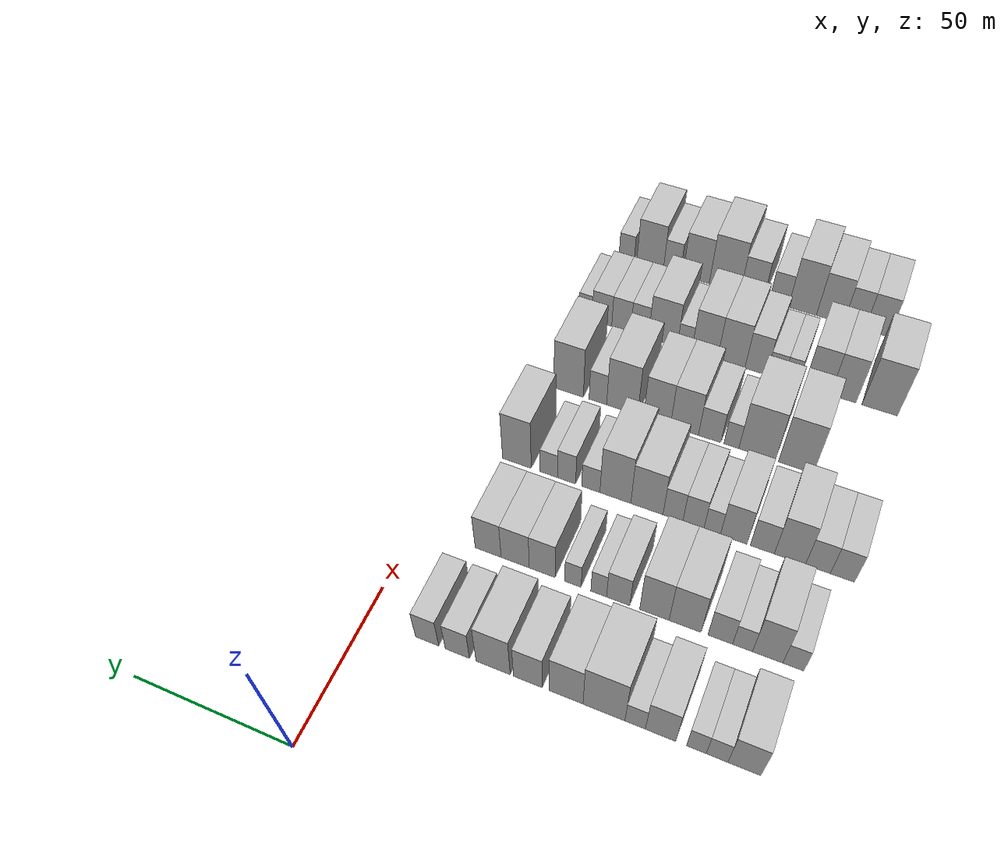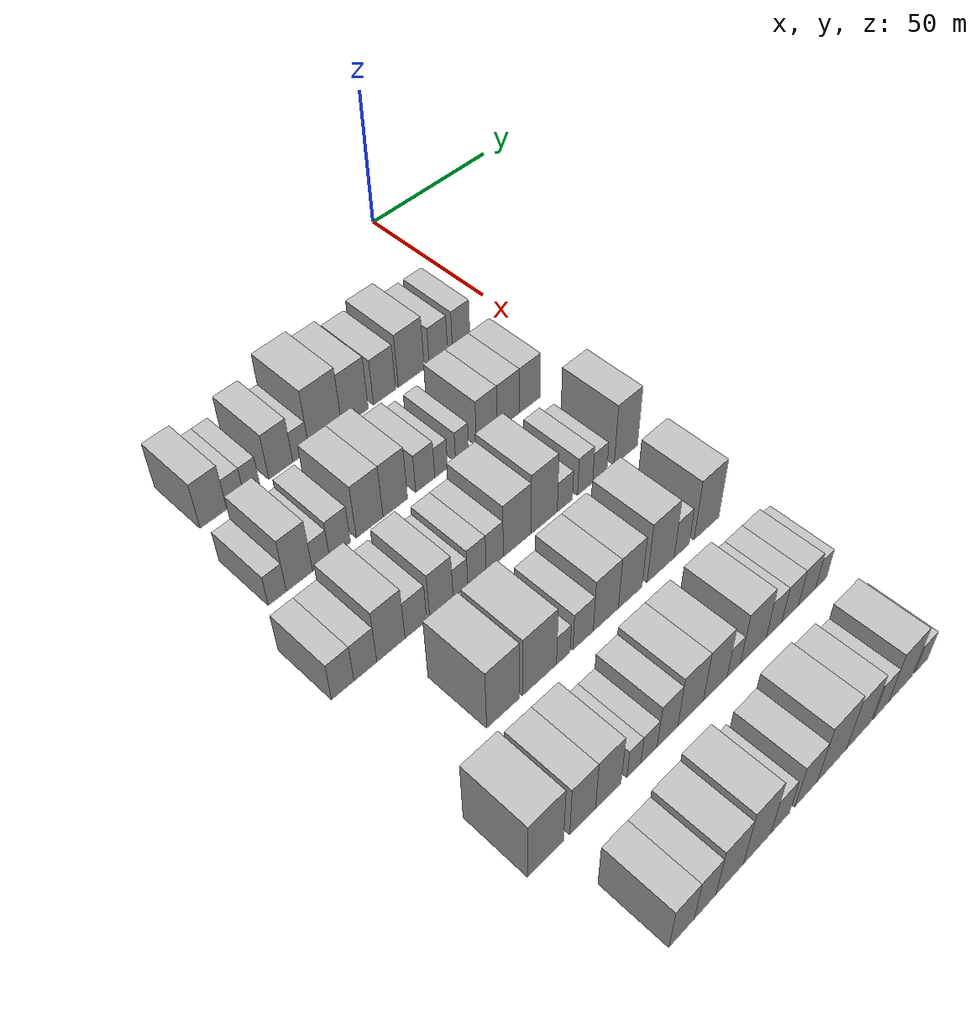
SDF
<sdf version="1.6">
 <world name="default">
  <model name="building_47">
   <static>1</static>
   <pose>50.0000 -110.8713 0 0.000000 0.000000 0.000000</pose>
   <link name="link">
    <pose>0 0 9.00 0 0 0</pose>
    <collision name="collision"><geometry><box><size>20.0000 8.8690 18.0000</size></box></geometry></collision>
    <visual name="visual">
     <cast_shadows>0</cast_shadows>
     <geometry><box><size>20.0000 8.8690 18.0000</size></box></geometry>
     <material>
      <script>
       <uri>model://HANNAS_wall/materials/scripts</uri>
       <uri>model://HANNAS_wall/materials/textures</uri>
       <name>vrc/HANNAS_wall</name>
      </script>
     </material>
    </visual>
   </link>
  </model>
  <model name="building_48">
   <static>1</static>
   <pose>50.0000 -103.4912 0 0.000000 0.000000 0.000000</pose>
   <link name="link">
    <pose>0 0 6.00 0 0 0</pose>
    <collision name="collision"><geometry><box><size>20.0000 5.8913 12.0000</size></box></geometry></collision>
    <visual name="visual">
     <cast_shadows>0</cast_shadows>
     <geometry><box><size>20.0000 5.8913 12.0000</size></box></geometry>
     <material>
      <script>
       <uri>model://HANNAS_wall/materials/scripts</uri>
       <uri>model://HANNAS_wall/materials/textures</uri>
       <name>vrc/HANNAS_wall</name>
      </script>
     </material>
    </visual>
   </link>
  </model>
  <model name="building_49">
   <static>1</static>
   <pose>50.0000 -97.8452 0 0.000000 0.000000 0.000000</pose>
   <link name="link">
    <pose>0 0 6.00 0 0 0</pose>
    <collision name="collision"><geometry><box><size>20.0000 5.4006 12.0000</size></box></geometry></collision>
    <visual name="visual">
     <cast_shadows>0</cast_shadows>
     <geometry><box><size>20.0000 5.4006 12.0000</size></box></geometry>
     <material>
      <script>
       <uri>model://HANNAS_wall/materials/scripts</uri>
       <uri>model://HANNAS_wall/materials/textures</uri>
       <name>vrc/HANNAS_wall</name>
      </script>
     </material>
    </visual>
   </link>
  </model>
  <model name="building_50">
   <static>1</static>
   <pose>50.0000 -87.9101 0 0.000000 0.000000 0.000000</pose>
   <link name="link">
    <pose>0 0 9.00 0 0 0</pose>
    <collision name="collision"><geometry><box><size>20.0000 8.4696 18.0000</size></box></geometry></collision>
    <visual name="visual">
     <cast_shadows>0</cast_shadows>
     <geometry><box><size>20.0000 8.4696 18.0000</size></box></geometry>
     <material>
      <script>
       <uri>model://HANNAS_wall/materials/scripts</uri>
       <uri>model://HANNAS_wall/materials/textures</uri>
       <name>vrc/HANNAS_wall</name>
      </script>
     </material>
    </visual>
   </link>
  </model>
  <model name="building_51">
   <static>1</static>
   <pose>50.0000 -80.7814 0 0.000000 0.000000 0.000000</pose>
   <link name="link">
    <pose>0 0 6.00 0 0 0</pose>
    <collision name="collision"><geometry><box><size>20.0000 5.7878 12.0000</size></box></geometry></collision>
    <visual name="visual">
     <cast_shadows>0</cast_shadows>
     <geometry><box><size>20.0000 5.7878 12.0000</size></box></geometry>
     <material>
      <script>
       <uri>model://HANNAS_wall/materials/scripts</uri>
       <uri>model://HANNAS_wall/materials/textures</uri>
       <name>vrc/HANNAS_wall</name>
      </script>
     </material>
    </visual>
   </link>
  </model>
  <model name="building_52">
   <static>1</static>
   <pose>50.0000 -71.8893 0 0.000000 0.000000 0.000000</pose>
   <link name="link">
    <pose>0 0 12.00 0 0 0</pose>
    <collision name="collision"><geometry><box><size>20.0000 11.9964 24.0000</size></box></geometry></collision>
    <visual name="visual">
     <cast_shadows>0</cast_shadows>
     <geometry><box><size>20.0000 11.9964 24.0000</size></box></geometry>
     <material>
      <script>
       <uri>model://HANNAS_wall/materials/scripts</uri>
       <uri>model://HANNAS_wall/materials/textures</uri>
       <name>vrc/HANNAS_wall</name>
      </script>
     </material>
    </visual>
   </link>
  </model>
  <model name="building_53">
   <static>1</static>
   <pose>50.0000 -60.9593 0 0.000000 0.000000 0.000000</pose>
   <link name="link">
    <pose>0 0 10.50 0 0 0</pose>
    <collision name="collision"><geometry><box><size>20.0000 9.8636 21.0000</size></box></geometry></collision>
    <visual name="visual">
     <cast_shadows>0</cast_shadows>
     <geometry><box><size>20.0000 9.8636 21.0000</size></box></geometry>
     <material>
      <script>
       <uri>model://HANNAS_wall/materials/scripts</uri>
       <uri>model://HANNAS_wall/materials/textures</uri>
       <name>vrc/HANNAS_wall</name>
      </script>
     </material>
    </visual>
   </link>
  </model>
  <model name="building_54">
   <static>1</static>
   <pose>50.0000 -49.7614 0 0.000000 0.000000 0.000000</pose>
   <link name="link">
    <pose>0 0 9.00 0 0 0</pose>
    <collision name="collision"><geometry><box><size>20.0000 8.5323 18.0000</size></box></geometry></collision>
    <visual name="visual">
     <cast_shadows>0</cast_shadows>
     <geometry><box><size>20.0000 8.5323 18.0000</size></box></geometry>
     <material>
      <script>
       <uri>model://HANNAS_wall/materials/scripts</uri>
       <uri>model://HANNAS_wall/materials/textures</uri>
       <name>vrc/HANNAS_wall</name>
      </script>
     </material>
    </visual>
   </link>
  </model>
  <model name="building_55">
   <static>1</static>
   <pose>50.0000 -39.3507 0 0.000000 0.000000 0.000000</pose>
   <link name="link">
    <pose>0 0 10.50 0 0 0</pose>
    <collision name="collision"><geometry><box><size>20.0000 10.2890 21.0000</size></box></geometry></collision>
    <visual name="visual">
     <cast_shadows>0</cast_shadows>
     <geometry><box><size>20.0000 10.2890 21.0000</size></box></geometry>
     <material>
      <script>
       <uri>model://HANNAS_wall/materials/scripts</uri>
       <uri>model://HANNAS_wall/materials/textures</uri>
       <name>vrc/HANNAS_wall</name>
      </script>
     </material>
    </visual>
   </link>
  </model>
  <model name="building_56">
   <static>1</static>
   <pose>50.0000 -28.4966 0 0.000000 0.000000 0.000000</pose>
   <link name="link">
    <pose>0 0 7.50 0 0 0</pose>
    <collision name="collision"><geometry><box><size>20.0000 7.4192 15.0000</size></box></geometry></collision>
    <visual name="visual">
     <cast_shadows>0</cast_shadows>
     <geometry><box><size>20.0000 7.4192 15.0000</size></box></geometry>
     <material>
      <script>
       <uri>model://HANNAS_wall/materials/scripts</uri>
       <uri>model://HANNAS_wall/materials/textures</uri>
       <name>vrc/HANNAS_wall</name>
      </script>
     </material>
    </visual>
   </link>
  </model>
  <model name="building_57">
   <static>1</static>
   <pose>50.0000 -19.1747 0 0.000000 0.000000 0.000000</pose>
   <link name="link">
    <pose>0 0 7.50 0 0 0</pose>
    <collision name="collision"><geometry><box><size>20.0000 7.2246 15.0000</size></box></geometry></collision>
    <visual name="visual">
     <cast_shadows>0</cast_shadows>
     <geometry><box><size>20.0000 7.2246 15.0000</size></box></geometry>
     <material>
      <script>
       <uri>model://HANNAS_wall/materials/scripts</uri>
       <uri>model://HANNAS_wall/materials/textures</uri>
       <name>vrc/HANNAS_wall</name>
      </script>
     </material>
    </visual>
   </link>
  </model>
  <model name="building_165">
   <static>1</static>
   <pose>82.0000 -115.3464 0 0.000000 0.000000 0.000000</pose>
   <link name="link">
    <pose>0 0 6.00 0 0 0</pose>
    <collision name="collision"><geometry><box><size>20.0000 5.9355 12.0000</size></box></geometry></collision>
    <visual name="visual">
     <cast_shadows>0</cast_shadows>
     <geometry><box><size>20.0000 5.9355 12.0000</size></box></geometry>
     <material>
      <script>
       <uri>model://HANNAS_wall/materials/scripts</uri>
       <uri>model://HANNAS_wall/materials/textures</uri>
       <name>vrc/HANNAS_wall</name>
      </script>
     </material>
    </visual>
   </link>
  </model>
  <model name="building_166">
   <static>1</static>
   <pose>82.0000 -108.0545 0 0.000000 0.000000 0.000000</pose>
   <link name="link">
    <pose>0 0 10.50 0 0 0</pose>
    <collision name="collision"><geometry><box><size>20.0000 8.6483 21.0000</size></box></geometry></collision>
    <visual name="visual">
     <cast_shadows>0</cast_shadows>
     <geometry><box><size>20.0000 8.6483 21.0000</size></box></geometry>
     <material>
      <script>
       <uri>model://HANNAS_wall/materials/scripts</uri>
       <uri>model://HANNAS_wall/materials/textures</uri>
       <name>vrc/HANNAS_wall</name>
      </script>
     </material>
    </visual>
   </link>
  </model>
  <model name="building_167">
   <static>1</static>
   <pose>82.0000 -100.8609 0 0.000000 0.000000 0.000000</pose>
   <link name="link">
    <pose>0 0 6.00 0 0 0</pose>
    <collision name="collision"><geometry><box><size>20.0000 5.7388 12.0000</size></box></geometry></collision>
    <visual name="visual">
     <cast_shadows>0</cast_shadows>
     <geometry><box><size>20.0000 5.7388 12.0000</size></box></geometry>
     <material>
      <script>
       <uri>model://HANNAS_wall/materials/scripts</uri>
       <uri>model://HANNAS_wall/materials/textures</uri>
       <name>vrc/HANNAS_wall</name>
      </script>
     </material>
    </visual>
   </link>
  </model>
  <model name="building_168">
   <static>1</static>
   <pose>82.0000 -94.4120 0 0.000000 0.000000 0.000000</pose>
   <link name="link">
    <pose>0 0 7.50 0 0 0</pose>
    <collision name="collision"><geometry><box><size>20.0000 7.1590 15.0000</size></box></geometry></collision>
    <visual name="visual">
     <cast_shadows>0</cast_shadows>
     <geometry><box><size>20.0000 7.1590 15.0000</size></box></geometry>
     <material>
      <script>
       <uri>model://HANNAS_wall/materials/scripts</uri>
       <uri>model://HANNAS_wall/materials/textures</uri>
       <name>vrc/HANNAS_wall</name>
      </script>
     </material>
    </visual>
   </link>
  </model>
  <model name="building_169">
   <static>1</static>
   <pose>82.0000 -84.0978 0 0.000000 0.000000 0.000000</pose>
   <link name="link">
    <pose>0 0 10.50 0 0 0</pose>
    <collision name="collision"><geometry><box><size>20.0000 9.4693 21.0000</size></box></geometry></collision>
    <visual name="visual">
     <cast_shadows>0</cast_shadows>
     <geometry><box><size>20.0000 9.4693 21.0000</size></box></geometry>
     <material>
      <script>
       <uri>model://HANNAS_wall/materials/scripts</uri>
       <uri>model://HANNAS_wall/materials/textures</uri>
       <name>vrc/HANNAS_wall</name>
      </script>
     </material>
    </visual>
   </link>
  </model>
  <model name="building_170">
   <static>1</static>
   <pose>82.0000 -74.9483 0 0.000000 0.000000 0.000000</pose>
   <link name="link">
    <pose>0 0 10.50 0 0 0</pose>
    <collision name="collision"><geometry><box><size>20.0000 8.8297 21.0000</size></box></geometry></collision>
    <visual name="visual">
     <cast_shadows>0</cast_shadows>
     <geometry><box><size>20.0000 8.8297 21.0000</size></box></geometry>
     <material>
      <script>
       <uri>model://HANNAS_wall/materials/scripts</uri>
       <uri>model://HANNAS_wall/materials/textures</uri>
       <name>vrc/HANNAS_wall</name>
      </script>
     </material>
    </visual>
   </link>
  </model>
  <model name="building_171">
   <static>1</static>
   <pose>82.0000 -63.9936 0 0.000000 0.000000 0.000000</pose>
   <link name="link">
    <pose>0 0 7.50 0 0 0</pose>
    <collision name="collision"><geometry><box><size>20.0000 7.0798 15.0000</size></box></geometry></collision>
    <visual name="visual">
     <cast_shadows>0</cast_shadows>
     <geometry><box><size>20.0000 7.0798 15.0000</size></box></geometry>
     <material>
      <script>
       <uri>model://HANNAS_wall/materials/scripts</uri>
       <uri>model://HANNAS_wall/materials/textures</uri>
       <name>vrc/HANNAS_wall</name>
      </script>
     </material>
    </visual>
   </link>
  </model>
  <model name="building_172">
   <static>1</static>
   <pose>82.0000 -58.0394 0 0.000000 0.000000 0.000000</pose>
   <link name="link">
    <pose>0 0 6.00 0 0 0</pose>
    <collision name="collision"><geometry><box><size>20.0000 4.8286 12.0000</size></box></geometry></collision>
    <visual name="visual">
     <cast_shadows>0</cast_shadows>
     <geometry><box><size>20.0000 4.8286 12.0000</size></box></geometry>
     <material>
      <script>
       <uri>model://HANNAS_wall/materials/scripts</uri>
       <uri>model://HANNAS_wall/materials/textures</uri>
       <name>vrc/HANNAS_wall</name>
      </script>
     </material>
    </visual>
   </link>
  </model>
  <model name="building_173">
   <static>1</static>
   <pose>82.0000 -50.0797 0 0.000000 0.000000 0.000000</pose>
   <link name="link">
    <pose>0 0 6.00 0 0 0</pose>
    <collision name="collision"><geometry><box><size>20.0000 5.0909 12.0000</size></box></geometry></collision>
    <visual name="visual">
     <cast_shadows>0</cast_shadows>
     <geometry><box><size>20.0000 5.0909 12.0000</size></box></geometry>
     <material>
      <script>
       <uri>model://HANNAS_wall/materials/scripts</uri>
       <uri>model://HANNAS_wall/materials/textures</uri>
       <name>vrc/HANNAS_wall</name>
      </script>
     </material>
    </visual>
   </link>
  </model>
  <model name="building_174">
   <static>1</static>
   <pose>82.0000 -40.4485 0 0.000000 0.000000 0.000000</pose>
   <link name="link">
    <pose>0 0 9.00 0 0 0</pose>
    <collision name="collision"><geometry><box><size>20.0000 8.1715 18.0000</size></box></geometry></collision>
    <visual name="visual">
     <cast_shadows>0</cast_shadows>
     <geometry><box><size>20.0000 8.1715 18.0000</size></box></geometry>
     <material>
      <script>
       <uri>model://HANNAS_wall/materials/scripts</uri>
       <uri>model://HANNAS_wall/materials/textures</uri>
       <name>vrc/HANNAS_wall</name>
      </script>
     </material>
    </visual>
   </link>
  </model>
  <model name="building_175">
   <static>1</static>
   <pose>82.0000 -31.8690 0 0.000000 0.000000 0.000000</pose>
   <link name="link">
    <pose>0 0 9.00 0 0 0</pose>
    <collision name="collision"><geometry><box><size>20.0000 8.9873 18.0000</size></box></geometry></collision>
    <visual name="visual">
     <cast_shadows>0</cast_shadows>
     <geometry><box><size>20.0000 8.9873 18.0000</size></box></geometry>
     <material>
      <script>
       <uri>model://HANNAS_wall/materials/scripts</uri>
       <uri>model://HANNAS_wall/materials/textures</uri>
       <name>vrc/HANNAS_wall</name>
      </script>
     </material>
    </visual>
   </link>
  </model>
  <model name="building_176">
   <static>1</static>
   <pose>82.0000 -23.1782 0 0.000000 0.000000 0.000000</pose>
   <link name="link">
    <pose>0 0 9.00 0 0 0</pose>
    <collision name="collision"><geometry><box><size>20.0000 8.3945 18.0000</size></box></geometry></collision>
    <visual name="visual">
     <cast_shadows>0</cast_shadows>
     <geometry><box><size>20.0000 8.3945 18.0000</size></box></geometry>
     <material>
      <script>
       <uri>model://HANNAS_wall/materials/scripts</uri>
       <uri>model://HANNAS_wall/materials/textures</uri>
       <name>vrc/HANNAS_wall</name>
      </script>
     </material>
    </visual>
   </link>
  </model>
  <model name="building_282">
   <static>1</static>
   <pose>114.0000 -121.4111 0 0.000000 0.000000 0.000000</pose>
   <link name="link">
    <pose>0 0 7.50 0 0 0</pose>
    <collision name="collision"><geometry><box><size>20.0000 7.1297 15.0000</size></box></geometry></collision>
    <visual name="visual">
     <cast_shadows>0</cast_shadows>
     <geometry><box><size>20.0000 7.1297 15.0000</size></box></geometry>
     <material>
      <script>
       <uri>model://HANNAS_wall/materials/scripts</uri>
       <uri>model://HANNAS_wall/materials/textures</uri>
       <name>vrc/HANNAS_wall</name>
      </script>
     </material>
    </visual>
   </link>
  </model>
  <model name="building_283">
   <static>1</static>
   <pose>114.0000 -114.1460 0 0.000000 0.000000 0.000000</pose>
   <link name="link">
    <pose>0 0 7.50 0 0 0</pose>
    <collision name="collision"><geometry><box><size>20.0000 7.4005 15.0000</size></box></geometry></collision>
    <visual name="visual">
     <cast_shadows>0</cast_shadows>
     <geometry><box><size>20.0000 7.4005 15.0000</size></box></geometry>
     <material>
      <script>
       <uri>model://HANNAS_wall/materials/scripts</uri>
       <uri>model://HANNAS_wall/materials/textures</uri>
       <name>vrc/HANNAS_wall</name>
      </script>
     </material>
    </visual>
   </link>
  </model>
  <model name="building_284">
   <static>1</static>
   <pose>114.0000 -105.7688 0 0.000000 0.000000 0.000000</pose>
   <link name="link">
    <pose>0 0 10.50 0 0 0</pose>
    <collision name="collision"><geometry><box><size>20.0000 9.3541 21.0000</size></box></geometry></collision>
    <visual name="visual">
     <cast_shadows>0</cast_shadows>
     <geometry><box><size>20.0000 9.3541 21.0000</size></box></geometry>
     <material>
      <script>
       <uri>model://HANNAS_wall/materials/scripts</uri>
       <uri>model://HANNAS_wall/materials/textures</uri>
       <name>vrc/HANNAS_wall</name>
      </script>
     </material>
    </visual>
   </link>
  </model>
  <model name="building_285">
   <static>1</static>
   <pose>114.0000 -97.4110 0 0.000000 0.000000 0.000000</pose>
   <link name="link">
    <pose>0 0 7.50 0 0 0</pose>
    <collision name="collision"><geometry><box><size>20.0000 7.3614 15.0000</size></box></geometry></collision>
    <visual name="visual">
     <cast_shadows>0</cast_shadows>
     <geometry><box><size>20.0000 7.3614 15.0000</size></box></geometry>
     <material>
      <script>
       <uri>model://HANNAS_wall/materials/scripts</uri>
       <uri>model://HANNAS_wall/materials/textures</uri>
       <name>vrc/HANNAS_wall</name>
      </script>
     </material>
    </visual>
   </link>
  </model>
  <model name="building_286">
   <static>1</static>
   <pose>114.0000 -88.6446 0 0.000000 0.000000 0.000000</pose>
   <link name="link">
    <pose>0 0 9.00 0 0 0</pose>
    <collision name="collision"><geometry><box><size>20.0000 8.1714 18.0000</size></box></geometry></collision>
    <visual name="visual">
     <cast_shadows>0</cast_shadows>
     <geometry><box><size>20.0000 8.1714 18.0000</size></box></geometry>
     <material>
      <script>
       <uri>model://HANNAS_wall/materials/scripts</uri>
       <uri>model://HANNAS_wall/materials/textures</uri>
       <name>vrc/HANNAS_wall</name>
      </script>
     </material>
    </visual>
   </link>
  </model>
  <model name="building_287">
   <static>1</static>
   <pose>114.0000 -81.9675 0 0.000000 0.000000 0.000000</pose>
   <link name="link">
    <pose>0 0 6.00 0 0 0</pose>
    <collision name="collision"><geometry><box><size>20.0000 5.1829 12.0000</size></box></geometry></collision>
    <visual name="visual">
     <cast_shadows>0</cast_shadows>
     <geometry><box><size>20.0000 5.1829 12.0000</size></box></geometry>
     <material>
      <script>
       <uri>model://HANNAS_wall/materials/scripts</uri>
       <uri>model://HANNAS_wall/materials/textures</uri>
       <name>vrc/HANNAS_wall</name>
      </script>
     </material>
    </visual>
   </link>
  </model>
  <model name="building_288">
   <static>1</static>
   <pose>114.0000 -76.0674 0 0.000000 0.000000 0.000000</pose>
   <link name="link">
    <pose>0 0 7.50 0 0 0</pose>
    <collision name="collision"><geometry><box><size>20.0000 6.6172 15.0000</size></box></geometry></collision>
    <visual name="visual">
     <cast_shadows>0</cast_shadows>
     <geometry><box><size>20.0000 6.6172 15.0000</size></box></geometry>
     <material>
      <script>
       <uri>model://HANNAS_wall/materials/scripts</uri>
       <uri>model://HANNAS_wall/materials/textures</uri>
       <name>vrc/HANNAS_wall</name>
      </script>
     </material>
    </visual>
   </link>
  </model>
  <model name="building_289">
   <static>1</static>
   <pose>114.0000 -69.6204 0 0.000000 0.000000 0.000000</pose>
   <link name="link">
    <pose>0 0 7.50 0 0 0</pose>
    <collision name="collision"><geometry><box><size>20.0000 6.2770 15.0000</size></box></geometry></collision>
    <visual name="visual">
     <cast_shadows>0</cast_shadows>
     <geometry><box><size>20.0000 6.2770 15.0000</size></box></geometry>
     <material>
      <script>
       <uri>model://HANNAS_wall/materials/scripts</uri>
       <uri>model://HANNAS_wall/materials/textures</uri>
       <name>vrc/HANNAS_wall</name>
      </script>
     </material>
    </visual>
   </link>
  </model>
  <model name="building_290">
   <static>1</static>
   <pose>114.0000 -61.3093 0 0.000000 0.000000 0.000000</pose>
   <link name="link">
    <pose>0 0 10.50 0 0 0</pose>
    <collision name="collision"><geometry><box><size>20.0000 10.3450 21.0000</size></box></geometry></collision>
    <visual name="visual">
     <cast_shadows>0</cast_shadows>
     <geometry><box><size>20.0000 10.3450 21.0000</size></box></geometry>
     <material>
      <script>
       <uri>model://HANNAS_wall/materials/scripts</uri>
       <uri>model://HANNAS_wall/materials/textures</uri>
       <name>vrc/HANNAS_wall</name>
      </script>
     </material>
    </visual>
   </link>
  </model>
  <model name="building_291">
   <static>1</static>
   <pose>114.0000 -51.1068 0 0.000000 0.000000 0.000000</pose>
   <link name="link">
    <pose>0 0 12.00 0 0 0</pose>
    <collision name="collision"><geometry><box><size>20.0000 10.0600 24.0000</size></box></geometry></collision>
    <visual name="visual">
     <cast_shadows>0</cast_shadows>
     <geometry><box><size>20.0000 10.0600 24.0000</size></box></geometry>
     <material>
      <script>
       <uri>model://HANNAS_wall/materials/scripts</uri>
       <uri>model://HANNAS_wall/materials/textures</uri>
       <name>vrc/HANNAS_wall</name>
      </script>
     </material>
    </visual>
   </link>
  </model>
  <model name="building_292">
   <static>1</static>
   <pose>114.0000 -43.0828 0 0.000000 0.000000 0.000000</pose>
   <link name="link">
    <pose>0 0 6.00 0 0 0</pose>
    <collision name="collision"><geometry><box><size>20.0000 5.9881 12.0000</size></box></geometry></collision>
    <visual name="visual">
     <cast_shadows>0</cast_shadows>
     <geometry><box><size>20.0000 5.9881 12.0000</size></box></geometry>
     <material>
      <script>
       <uri>model://HANNAS_wall/materials/scripts</uri>
       <uri>model://HANNAS_wall/materials/textures</uri>
       <name>vrc/HANNAS_wall</name>
      </script>
     </material>
    </visual>
   </link>
  </model>
  <model name="building_293">
   <static>1</static>
   <pose>114.0000 -35.0542 0 0.000000 0.000000 0.000000</pose>
   <link name="link">
    <pose>0 0 7.50 0 0 0</pose>
    <collision name="collision"><geometry><box><size>20.0000 6.0692 15.0000</size></box></geometry></collision>
    <visual name="visual">
     <cast_shadows>0</cast_shadows>
     <geometry><box><size>20.0000 6.0692 15.0000</size></box></geometry>
     <material>
      <script>
       <uri>model://HANNAS_wall/materials/scripts</uri>
       <uri>model://HANNAS_wall/materials/textures</uri>
       <name>vrc/HANNAS_wall</name>
      </script>
     </material>
    </visual>
   </link>
  </model>
  <model name="building_294">
   <static>1</static>
   <pose>114.0000 -29.1267 0 0.000000 0.000000 0.000000</pose>
   <link name="link">
    <pose>0 0 6.00 0 0 0</pose>
    <collision name="collision"><geometry><box><size>20.0000 5.7857 12.0000</size></box></geometry></collision>
    <visual name="visual">
     <cast_shadows>0</cast_shadows>
     <geometry><box><size>20.0000 5.7857 12.0000</size></box></geometry>
     <material>
      <script>
       <uri>model://HANNAS_wall/materials/scripts</uri>
       <uri>model://HANNAS_wall/materials/textures</uri>
       <name>vrc/HANNAS_wall</name>
      </script>
     </material>
    </visual>
   </link>
  </model>
  <model name="building_295">
   <static>1</static>
   <pose>114.0000 -18.3540 0 0.000000 0.000000 0.000000</pose>
   <link name="link">
    <pose>0 0 12.00 0 0 0</pose>
    <collision name="collision"><geometry><box><size>20.0000 9.7597 24.0000</size></box></geometry></collision>
    <visual name="visual">
     <cast_shadows>0</cast_shadows>
     <geometry><box><size>20.0000 9.7597 24.0000</size></box></geometry>
     <material>
      <script>
       <uri>model://HANNAS_wall/materials/scripts</uri>
       <uri>model://HANNAS_wall/materials/textures</uri>
       <name>vrc/HANNAS_wall</name>
      </script>
     </material>
    </visual>
   </link>
  </model>
  <model name="building_401">
   <static>1</static>
   <pose>146.0000 -99.0870 0 0.000000 0.000000 0.000000</pose>
   <link name="link">
    <pose>0 0 12.00 0 0 0</pose>
    <collision name="collision"><geometry><box><size>20.0000 11.1554 24.0000</size></box></geometry></collision>
    <visual name="visual">
     <cast_shadows>0</cast_shadows>
     <geometry><box><size>20.0000 11.1554 24.0000</size></box></geometry>
     <material>
      <script>
       <uri>model://HANNAS_wall/materials/scripts</uri>
       <uri>model://HANNAS_wall/materials/textures</uri>
       <name>vrc/HANNAS_wall</name>
      </script>
     </material>
    </visual>
   </link>
  </model>
  <model name="building_402">
   <static>1</static>
   <pose>146.0000 -86.5880 0 0.000000 0.000000 0.000000</pose>
   <link name="link">
    <pose>0 0 12.00 0 0 0</pose>
    <collision name="collision"><geometry><box><size>20.0000 11.8426 24.0000</size></box></geometry></collision>
    <visual name="visual">
     <cast_shadows>0</cast_shadows>
     <geometry><box><size>20.0000 11.8426 24.0000</size></box></geometry>
     <material>
      <script>
       <uri>model://HANNAS_wall/materials/scripts</uri>
       <uri>model://HANNAS_wall/materials/textures</uri>
       <name>vrc/HANNAS_wall</name>
      </script>
     </material>
    </visual>
   </link>
  </model>
  <model name="building_403">
   <static>1</static>
   <pose>146.0000 -78.2168 0 0.000000 0.000000 0.000000</pose>
   <link name="link">
    <pose>0 0 6.00 0 0 0</pose>
    <collision name="collision"><geometry><box><size>20.0000 4.9000 12.0000</size></box></geometry></collision>
    <visual name="visual">
     <cast_shadows>0</cast_shadows>
     <geometry><box><size>20.0000 4.9000 12.0000</size></box></geometry>
     <material>
      <script>
       <uri>model://HANNAS_wall/materials/scripts</uri>
       <uri>model://HANNAS_wall/materials/textures</uri>
       <name>vrc/HANNAS_wall</name>
      </script>
     </material>
    </visual>
   </link>
  </model>
  <model name="building_404">
   <static>1</static>
   <pose>146.0000 -71.0404 0 0.000000 0.000000 0.000000</pose>
   <link name="link">
    <pose>0 0 7.50 0 0 0</pose>
    <collision name="collision"><geometry><box><size>20.0000 7.4527 15.0000</size></box></geometry></collision>
    <visual name="visual">
     <cast_shadows>0</cast_shadows>
     <geometry><box><size>20.0000 7.4527 15.0000</size></box></geometry>
     <material>
      <script>
       <uri>model://HANNAS_wall/materials/scripts</uri>
       <uri>model://HANNAS_wall/materials/textures</uri>
       <name>vrc/HANNAS_wall</name>
      </script>
     </material>
    </visual>
   </link>
  </model>
  <model name="building_405">
   <static>1</static>
   <pose>146.0000 -62.6101 0 0.000000 0.000000 0.000000</pose>
   <link name="link">
    <pose>0 0 10.50 0 0 0</pose>
    <collision name="collision"><geometry><box><size>20.0000 9.4079 21.0000</size></box></geometry></collision>
    <visual name="visual">
     <cast_shadows>0</cast_shadows>
     <geometry><box><size>20.0000 9.4079 21.0000</size></box></geometry>
     <material>
      <script>
       <uri>model://HANNAS_wall/materials/scripts</uri>
       <uri>model://HANNAS_wall/materials/textures</uri>
       <name>vrc/HANNAS_wall</name>
      </script>
     </material>
    </visual>
   </link>
  </model>
  <model name="building_406">
   <static>1</static>
   <pose>146.0000 -53.3437 0 0.000000 0.000000 0.000000</pose>
   <link name="link">
    <pose>0 0 10.50 0 0 0</pose>
    <collision name="collision"><geometry><box><size>20.0000 9.1249 21.0000</size></box></geometry></collision>
    <visual name="visual">
     <cast_shadows>0</cast_shadows>
     <geometry><box><size>20.0000 9.1249 21.0000</size></box></geometry>
     <material>
      <script>
       <uri>model://HANNAS_wall/materials/scripts</uri>
       <uri>model://HANNAS_wall/materials/textures</uri>
       <name>vrc/HANNAS_wall</name>
      </script>
     </material>
    </visual>
   </link>
  </model>
  <model name="building_407">
   <static>1</static>
   <pose>146.0000 -41.4202 0 0.000000 0.000000 0.000000</pose>
   <link name="link">
    <pose>0 0 12.00 0 0 0</pose>
    <collision name="collision"><geometry><box><size>20.0000 10.7222 24.0000</size></box></geometry></collision>
    <visual name="visual">
     <cast_shadows>0</cast_shadows>
     <geometry><box><size>20.0000 10.7222 24.0000</size></box></geometry>
     <material>
      <script>
       <uri>model://HANNAS_wall/materials/scripts</uri>
       <uri>model://HANNAS_wall/materials/textures</uri>
       <name>vrc/HANNAS_wall</name>
      </script>
     </material>
    </visual>
   </link>
  </model>
  <model name="building_408">
   <static>1</static>
   <pose>146.0000 -33.0127 0 0.000000 0.000000 0.000000</pose>
   <link name="link">
    <pose>0 0 7.50 0 0 0</pose>
    <collision name="collision"><geometry><box><size>20.0000 6.0927 15.0000</size></box></geometry></collision>
    <visual name="visual">
     <cast_shadows>0</cast_shadows>
     <geometry><box><size>20.0000 6.0927 15.0000</size></box></geometry>
     <material>
      <script>
       <uri>model://HANNAS_wall/materials/scripts</uri>
       <uri>model://HANNAS_wall/materials/textures</uri>
       <name>vrc/HANNAS_wall</name>
      </script>
     </material>
    </visual>
   </link>
  </model>
  <model name="building_409">
   <static>1</static>
   <pose>146.0000 -22.7978 0 0.000000 0.000000 0.000000</pose>
   <link name="link">
    <pose>0 0 12.00 0 0 0</pose>
    <collision name="collision"><geometry><box><size>20.0000 10.3372 24.0000</size></box></geometry></collision>
    <visual name="visual">
     <cast_shadows>0</cast_shadows>
     <geometry><box><size>20.0000 10.3372 24.0000</size></box></geometry>
     <material>
      <script>
       <uri>model://HANNAS_wall/materials/scripts</uri>
       <uri>model://HANNAS_wall/materials/textures</uri>
       <name>vrc/HANNAS_wall</name>
      </script>
     </material>
    </visual>
   </link>
  </model>
  <model name="building_517">
   <static>1</static>
   <pose>178.0000 -118.4086 0 0.000000 0.000000 0.000000</pose>
   <link name="link">
    <pose>0 0 12.00 0 0 0</pose>
    <collision name="collision"><geometry><box><size>20.0000 11.5344 24.0000</size></box></geometry></collision>
    <visual name="visual">
     <cast_shadows>0</cast_shadows>
     <geometry><box><size>20.0000 11.5344 24.0000</size></box></geometry>
     <material>
      <script>
       <uri>model://HANNAS_wall/materials/scripts</uri>
       <uri>model://HANNAS_wall/materials/textures</uri>
       <name>vrc/HANNAS_wall</name>
      </script>
     </material>
    </visual>
   </link>
  </model>
  <model name="building_518">
   <static>1</static>
   <pose>178.0000 -106.3821 0 0.000000 0.000000 0.000000</pose>
   <link name="link">
    <pose>0 0 10.50 0 0 0</pose>
    <collision name="collision"><geometry><box><size>20.0000 8.5187 21.0000</size></box></geometry></collision>
    <visual name="visual">
     <cast_shadows>0</cast_shadows>
     <geometry><box><size>20.0000 8.5187 21.0000</size></box></geometry>
     <material>
      <script>
       <uri>model://HANNAS_wall/materials/scripts</uri>
       <uri>model://HANNAS_wall/materials/textures</uri>
       <name>vrc/HANNAS_wall</name>
      </script>
     </material>
    </visual>
   </link>
  </model>
  <model name="building_519">
   <static>1</static>
   <pose>178.0000 -97.7437 0 0.000000 0.000000 0.000000</pose>
   <link name="link">
    <pose>0 0 10.50 0 0 0</pose>
    <collision name="collision"><geometry><box><size>20.0000 8.7580 21.0000</size></box></geometry></collision>
    <visual name="visual">
     <cast_shadows>0</cast_shadows>
     <geometry><box><size>20.0000 8.7580 21.0000</size></box></geometry>
     <material>
      <script>
       <uri>model://HANNAS_wall/materials/scripts</uri>
       <uri>model://HANNAS_wall/materials/textures</uri>
       <name>vrc/HANNAS_wall</name>
      </script>
     </material>
    </visual>
   </link>
  </model>
  <model name="building_520">
   <static>1</static>
   <pose>178.0000 -88.9168 0 0.000000 0.000000 0.000000</pose>
   <link name="link">
    <pose>0 0 6.00 0 0 0</pose>
    <collision name="collision"><geometry><box><size>20.0000 4.8958 12.0000</size></box></geometry></collision>
    <visual name="visual">
     <cast_shadows>0</cast_shadows>
     <geometry><box><size>20.0000 4.8958 12.0000</size></box></geometry>
     <material>
      <script>
       <uri>model://HANNAS_wall/materials/scripts</uri>
       <uri>model://HANNAS_wall/materials/textures</uri>
       <name>vrc/HANNAS_wall</name>
      </script>
     </material>
    </visual>
   </link>
  </model>
  <model name="building_521">
   <static>1</static>
   <pose>178.0000 -83.5847 0 0.000000 0.000000 0.000000</pose>
   <link name="link">
    <pose>0 0 6.00 0 0 0</pose>
    <collision name="collision"><geometry><box><size>20.0000 5.7685 12.0000</size></box></geometry></collision>
    <visual name="visual">
     <cast_shadows>0</cast_shadows>
     <geometry><box><size>20.0000 5.7685 12.0000</size></box></geometry>
     <material>
      <script>
       <uri>model://HANNAS_wall/materials/scripts</uri>
       <uri>model://HANNAS_wall/materials/textures</uri>
       <name>vrc/HANNAS_wall</name>
      </script>
     </material>
    </visual>
   </link>
  </model>
  <model name="building_522">
   <static>1</static>
   <pose>178.0000 -76.9386 0 0.000000 0.000000 0.000000</pose>
   <link name="link">
    <pose>0 0 9.00 0 0 0</pose>
    <collision name="collision"><geometry><box><size>20.0000 7.5236 18.0000</size></box></geometry></collision>
    <visual name="visual">
     <cast_shadows>0</cast_shadows>
     <geometry><box><size>20.0000 7.5236 18.0000</size></box></geometry>
     <material>
      <script>
       <uri>model://HANNAS_wall/materials/scripts</uri>
       <uri>model://HANNAS_wall/materials/textures</uri>
       <name>vrc/HANNAS_wall</name>
      </script>
     </material>
    </visual>
   </link>
  </model>
  <model name="building_523">
   <static>1</static>
   <pose>178.0000 -68.3985 0 0.000000 0.000000 0.000000</pose>
   <link name="link">
    <pose>0 0 10.50 0 0 0</pose>
    <collision name="collision"><geometry><box><size>20.0000 9.5565 21.0000</size></box></geometry></collision>
    <visual name="visual">
     <cast_shadows>0</cast_shadows>
     <geometry><box><size>20.0000 9.5565 21.0000</size></box></geometry>
     <material>
      <script>
       <uri>model://HANNAS_wall/materials/scripts</uri>
       <uri>model://HANNAS_wall/materials/textures</uri>
       <name>vrc/HANNAS_wall</name>
      </script>
     </material>
    </visual>
   </link>
  </model>
  <model name="building_524">
   <static>1</static>
   <pose>178.0000 -59.1127 0 0.000000 0.000000 0.000000</pose>
   <link name="link">
    <pose>0 0 10.50 0 0 0</pose>
    <collision name="collision"><geometry><box><size>20.0000 9.0151 21.0000</size></box></geometry></collision>
    <visual name="visual">
     <cast_shadows>0</cast_shadows>
     <geometry><box><size>20.0000 9.0151 21.0000</size></box></geometry>
     <material>
      <script>
       <uri>model://HANNAS_wall/materials/scripts</uri>
       <uri>model://HANNAS_wall/materials/textures</uri>
       <name>vrc/HANNAS_wall</name>
      </script>
     </material>
    </visual>
   </link>
  </model>
  <model name="building_525">
   <static>1</static>
   <pose>178.0000 -52.0147 0 0.000000 0.000000 0.000000</pose>
   <link name="link">
    <pose>0 0 6.00 0 0 0</pose>
    <collision name="collision"><geometry><box><size>20.0000 5.1810 12.0000</size></box></geometry></collision>
    <visual name="visual">
     <cast_shadows>0</cast_shadows>
     <geometry><box><size>20.0000 5.1810 12.0000</size></box></geometry>
     <material>
      <script>
       <uri>model://HANNAS_wall/materials/scripts</uri>
       <uri>model://HANNAS_wall/materials/textures</uri>
       <name>vrc/HANNAS_wall</name>
      </script>
     </material>
    </visual>
   </link>
  </model>
  <model name="building_526">
   <static>1</static>
   <pose>178.0000 -44.2716 0 0.000000 0.000000 0.000000</pose>
   <link name="link">
    <pose>0 0 10.50 0 0 0</pose>
    <collision name="collision"><geometry><box><size>20.0000 10.3052 21.0000</size></box></geometry></collision>
    <visual name="visual">
     <cast_shadows>0</cast_shadows>
     <geometry><box><size>20.0000 10.3052 21.0000</size></box></geometry>
     <material>
      <script>
       <uri>model://HANNAS_wall/materials/scripts</uri>
       <uri>model://HANNAS_wall/materials/textures</uri>
       <name>vrc/HANNAS_wall</name>
      </script>
     </material>
    </visual>
   </link>
  </model>
  <model name="building_527">
   <static>1</static>
   <pose>178.0000 -35.9122 0 0.000000 0.000000 0.000000</pose>
   <link name="link">
    <pose>0 0 7.50 0 0 0</pose>
    <collision name="collision"><geometry><box><size>20.0000 6.4136 15.0000</size></box></geometry></collision>
    <visual name="visual">
     <cast_shadows>0</cast_shadows>
     <geometry><box><size>20.0000 6.4136 15.0000</size></box></geometry>
     <material>
      <script>
       <uri>model://HANNAS_wall/materials/scripts</uri>
       <uri>model://HANNAS_wall/materials/textures</uri>
       <name>vrc/HANNAS_wall</name>
      </script>
     </material>
    </visual>
   </link>
  </model>
  <model name="building_528">
   <static>1</static>
   <pose>178.0000 -29.2238 0 0.000000 0.000000 0.000000</pose>
   <link name="link">
    <pose>0 0 7.50 0 0 0</pose>
    <collision name="collision"><geometry><box><size>20.0000 6.9633 15.0000</size></box></geometry></collision>
    <visual name="visual">
     <cast_shadows>0</cast_shadows>
     <geometry><box><size>20.0000 6.9633 15.0000</size></box></geometry>
     <material>
      <script>
       <uri>model://HANNAS_wall/materials/scripts</uri>
       <uri>model://HANNAS_wall/materials/textures</uri>
       <name>vrc/HANNAS_wall</name>
      </script>
     </material>
    </visual>
   </link>
  </model>
  <model name="building_529">
   <static>1</static>
   <pose>178.0000 -22.1310 0 0.000000 0.000000 0.000000</pose>
   <link name="link">
    <pose>0 0 7.50 0 0 0</pose>
    <collision name="collision"><geometry><box><size>20.0000 7.2222 15.0000</size></box></geometry></collision>
    <visual name="visual">
     <cast_shadows>0</cast_shadows>
     <geometry><box><size>20.0000 7.2222 15.0000</size></box></geometry>
     <material>
      <script>
       <uri>model://HANNAS_wall/materials/scripts</uri>
       <uri>model://HANNAS_wall/materials/textures</uri>
       <name>vrc/HANNAS_wall</name>
      </script>
     </material>
    </visual>
   </link>
  </model>
  <model name="building_530">
   <static>1</static>
   <pose>178.0000 -16.1040 0 0.000000 0.000000 0.000000</pose>
   <link name="link">
    <pose>0 0 6.00 0 0 0</pose>
    <collision name="collision"><geometry><box><size>20.0000 4.8319 12.0000</size></box></geometry></collision>
    <visual name="visual">
     <cast_shadows>0</cast_shadows>
     <geometry><box><size>20.0000 4.8319 12.0000</size></box></geometry>
     <material>
      <script>
       <uri>model://HANNAS_wall/materials/scripts</uri>
       <uri>model://HANNAS_wall/materials/textures</uri>
       <name>vrc/HANNAS_wall</name>
      </script>
     </material>
    </visual>
   </link>
  </model>
  <model name="building_638">
   <static>1</static>
   <pose>210.0000 -110.4484 0 0.000000 0.000000 0.000000</pose>
   <link name="link">
    <pose>0 0 9.00 0 0 0</pose>
    <collision name="collision"><geometry><box><size>20.0000 8.3606 18.0000</size></box></geometry></collision>
    <visual name="visual">
     <cast_shadows>0</cast_shadows>
     <geometry><box><size>20.0000 8.3606 18.0000</size></box></geometry>
     <material>
      <script>
       <uri>model://HANNAS_wall/materials/scripts</uri>
       <uri>model://HANNAS_wall/materials/textures</uri>
       <name>vrc/HANNAS_wall</name>
      </script>
     </material>
    </visual>
   </link>
  </model>
  <model name="building_639">
   <static>1</static>
   <pose>210.0000 -102.5997 0 0.000000 0.000000 0.000000</pose>
   <link name="link">
    <pose>0 0 9.00 0 0 0</pose>
    <collision name="collision"><geometry><box><size>20.0000 7.3367 18.0000</size></box></geometry></collision>
    <visual name="visual">
     <cast_shadows>0</cast_shadows>
     <geometry><box><size>20.0000 7.3367 18.0000</size></box></geometry>
     <material>
      <script>
       <uri>model://HANNAS_wall/materials/scripts</uri>
       <uri>model://HANNAS_wall/materials/textures</uri>
       <name>vrc/HANNAS_wall</name>
      </script>
     </material>
    </visual>
   </link>
  </model>
  <model name="building_640">
   <static>1</static>
   <pose>210.0000 -94.1512 0 0.000000 0.000000 0.000000</pose>
   <link name="link">
    <pose>0 0 10.50 0 0 0</pose>
    <collision name="collision"><geometry><box><size>20.0000 9.5605 21.0000</size></box></geometry></collision>
    <visual name="visual">
     <cast_shadows>0</cast_shadows>
     <geometry><box><size>20.0000 9.5605 21.0000</size></box></geometry>
     <material>
      <script>
       <uri>model://HANNAS_wall/materials/scripts</uri>
       <uri>model://HANNAS_wall/materials/textures</uri>
       <name>vrc/HANNAS_wall</name>
      </script>
     </material>
    </visual>
   </link>
  </model>
  <model name="building_641">
   <static>1</static>
   <pose>210.0000 -84.4017 0 0.000000 0.000000 0.000000</pose>
   <link name="link">
    <pose>0 0 12.00 0 0 0</pose>
    <collision name="collision"><geometry><box><size>20.0000 9.9385 24.0000</size></box></geometry></collision>
    <visual name="visual">
     <cast_shadows>0</cast_shadows>
     <geometry><box><size>20.0000 9.9385 24.0000</size></box></geometry>
     <material>
      <script>
       <uri>model://HANNAS_wall/materials/scripts</uri>
       <uri>model://HANNAS_wall/materials/textures</uri>
       <name>vrc/HANNAS_wall</name>
      </script>
     </material>
    </visual>
   </link>
  </model>
  <model name="building_642">
   <static>1</static>
   <pose>210.0000 -75.9858 0 0.000000 0.000000 0.000000</pose>
   <link name="link">
    <pose>0 0 7.50 0 0 0</pose>
    <collision name="collision"><geometry><box><size>20.0000 6.8934 15.0000</size></box></geometry></collision>
    <visual name="visual">
     <cast_shadows>0</cast_shadows>
     <geometry><box><size>20.0000 6.8934 15.0000</size></box></geometry>
     <material>
      <script>
       <uri>model://HANNAS_wall/materials/scripts</uri>
       <uri>model://HANNAS_wall/materials/textures</uri>
       <name>vrc/HANNAS_wall</name>
      </script>
     </material>
    </visual>
   </link>
  </model>
  <model name="building_643">
   <static>1</static>
   <pose>210.0000 -66.3047 0 0.000000 0.000000 0.000000</pose>
   <link name="link">
    <pose>0 0 9.00 0 0 0</pose>
    <collision name="collision"><geometry><box><size>20.0000 8.4688 18.0000</size></box></geometry></collision>
    <visual name="visual">
     <cast_shadows>0</cast_shadows>
     <geometry><box><size>20.0000 8.4688 18.0000</size></box></geometry>
     <material>
      <script>
       <uri>model://HANNAS_wall/materials/scripts</uri>
       <uri>model://HANNAS_wall/materials/textures</uri>
       <name>vrc/HANNAS_wall</name>
      </script>
     </material>
    </visual>
   </link>
  </model>
  <model name="building_644">
   <static>1</static>
   <pose>210.0000 -56.3378 0 0.000000 0.000000 0.000000</pose>
   <link name="link">
    <pose>0 0 12.00 0 0 0</pose>
    <collision name="collision"><geometry><box><size>20.0000 11.4650 24.0000</size></box></geometry></collision>
    <visual name="visual">
     <cast_shadows>0</cast_shadows>
     <geometry><box><size>20.0000 11.4650 24.0000</size></box></geometry>
     <material>
      <script>
       <uri>model://HANNAS_wall/materials/scripts</uri>
       <uri>model://HANNAS_wall/materials/textures</uri>
       <name>vrc/HANNAS_wall</name>
      </script>
     </material>
    </visual>
   </link>
  </model>
  <model name="building_645">
   <static>1</static>
   <pose>210.0000 -45.6879 0 0.000000 0.000000 0.000000</pose>
   <link name="link">
    <pose>0 0 10.50 0 0 0</pose>
    <collision name="collision"><geometry><box><size>20.0000 9.8350 21.0000</size></box></geometry></collision>
    <visual name="visual">
     <cast_shadows>0</cast_shadows>
     <geometry><box><size>20.0000 9.8350 21.0000</size></box></geometry>
     <material>
      <script>
       <uri>model://HANNAS_wall/materials/scripts</uri>
       <uri>model://HANNAS_wall/materials/textures</uri>
       <name>vrc/HANNAS_wall</name>
      </script>
     </material>
    </visual>
   </link>
  </model>
  <model name="building_646">
   <static>1</static>
   <pose>210.0000 -36.5962 0 0.000000 0.000000 0.000000</pose>
   <link name="link">
    <pose>0 0 7.50 0 0 0</pose>
    <collision name="collision"><geometry><box><size>20.0000 6.3484 15.0000</size></box></geometry></collision>
    <visual name="visual">
     <cast_shadows>0</cast_shadows>
     <geometry><box><size>20.0000 6.3484 15.0000</size></box></geometry>
     <material>
      <script>
       <uri>model://HANNAS_wall/materials/scripts</uri>
       <uri>model://HANNAS_wall/materials/textures</uri>
       <name>vrc/HANNAS_wall</name>
      </script>
     </material>
    </visual>
   </link>
  </model>
  <model name="building_647">
   <static>1</static>
   <pose>210.0000 -28.3516 0 0.000000 0.000000 0.000000</pose>
   <link name="link">
    <pose>0 0 10.50 0 0 0</pose>
    <collision name="collision"><geometry><box><size>20.0000 10.1409 21.0000</size></box></geometry></collision>
    <visual name="visual">
     <cast_shadows>0</cast_shadows>
     <geometry><box><size>20.0000 10.1409 21.0000</size></box></geometry>
     <material>
      <script>
       <uri>model://HANNAS_wall/materials/scripts</uri>
       <uri>model://HANNAS_wall/materials/textures</uri>
       <name>vrc/HANNAS_wall</name>
      </script>
     </material>
    </visual>
   </link>
  </model>
  <model name="building_648">
   <static>1</static>
   <pose>210.0000 -19.3843 0 0.000000 0.000000 0.000000</pose>
   <link name="link">
    <pose>0 0 6.00 0 0 0</pose>
    <collision name="collision"><geometry><box><size>20.0000 5.7936 12.0000</size></box></geometry></collision>
    <visual name="visual">
     <cast_shadows>0</cast_shadows>
     <geometry><box><size>20.0000 5.7936 12.0000</size></box></geometry>
     <material>
      <script>
       <uri>model://HANNAS_wall/materials/scripts</uri>
       <uri>model://HANNAS_wall/materials/textures</uri>
       <name>vrc/HANNAS_wall</name>
      </script>
     </material>
    </visual>
   </link>
  </model>
 </world>
</sdf>
